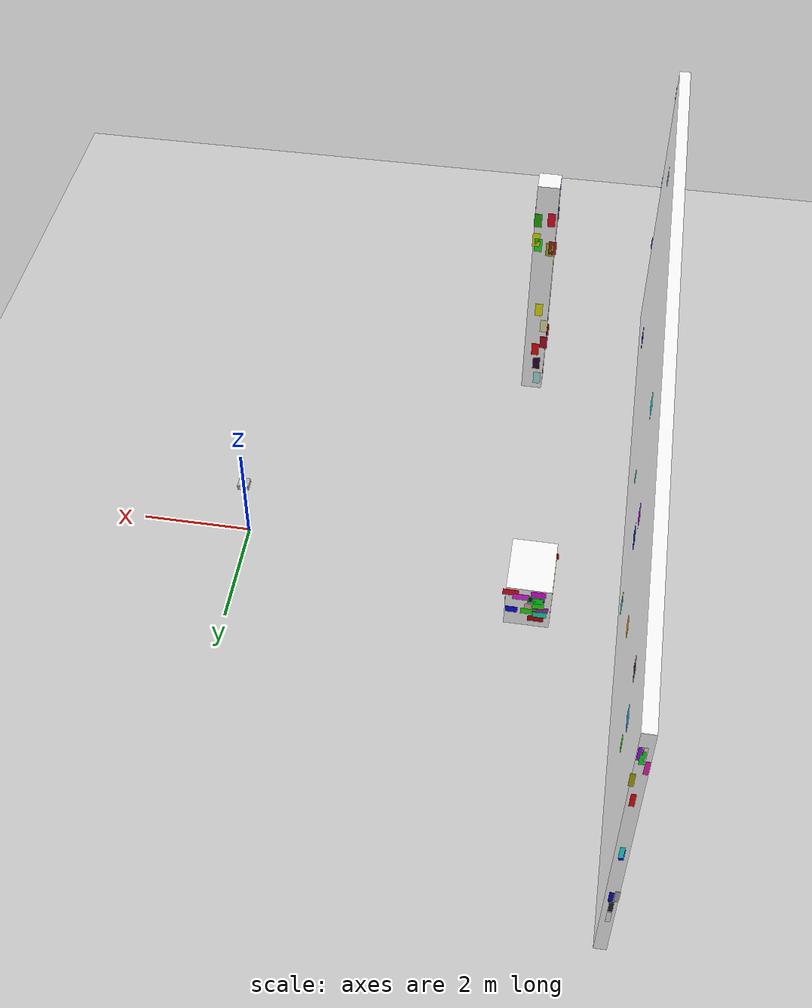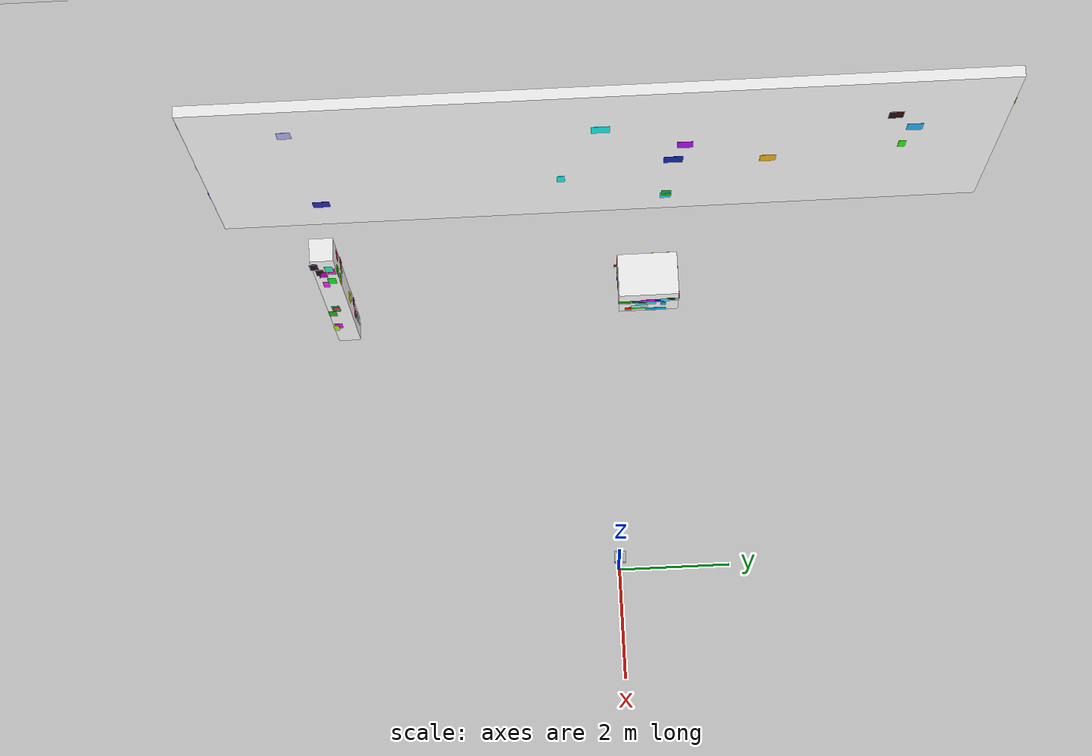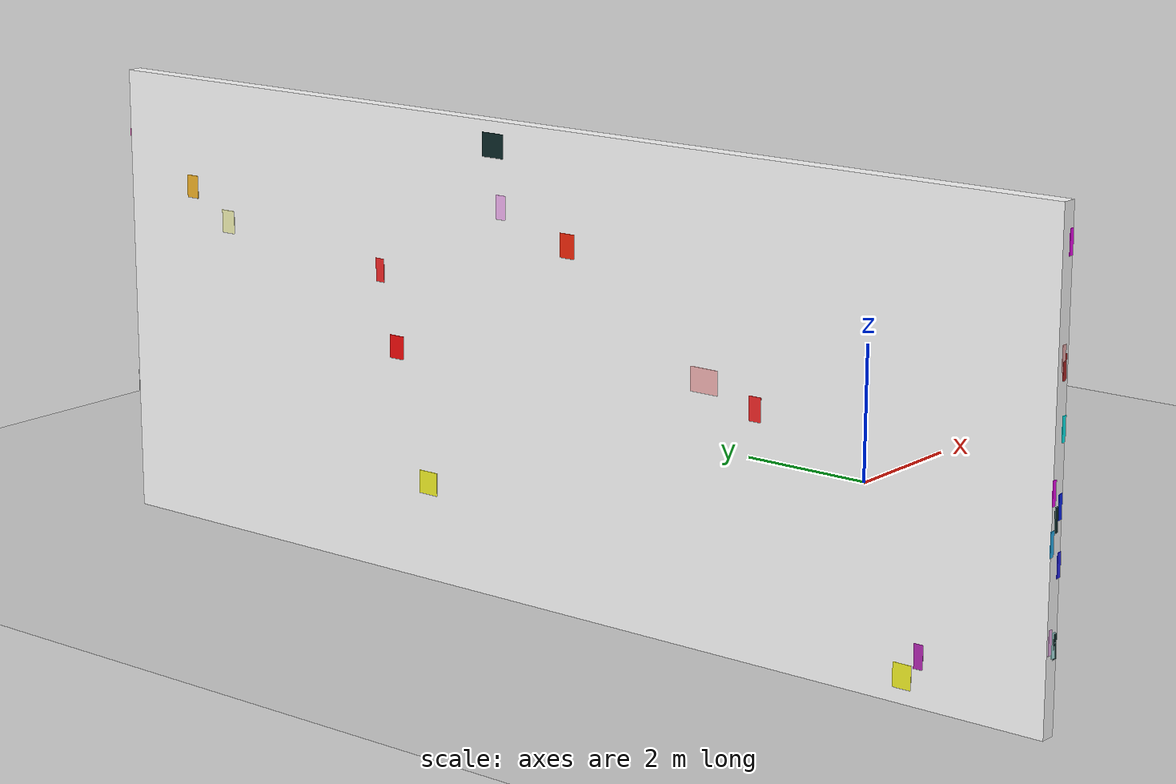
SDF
<sdf version="1.9">
 <world name="default">
  <model name="ground_plane">
   <static>true</static>
   <link name="link">
    <collision name="collision">
     <geometry><plane><normal>0 0 1</normal><size>1 1</size></plane></geometry>
    </collision>
    <visual name="visual">
     <geometry><plane><normal>0 0 1</normal><size>500 500</size></plane></geometry>
     <material>
      <ambient>0.8 0.8 0.8 1</ambient>
      <diffuse>0.8 0.8 0.8 1</diffuse>
      <specular>0.8 0.8 0.8 1</specular>
     </material>
    </visual>
    <inertial>
     <mass>1</mass>
     <inertia><ixx>1</ixx><ixy>0</ixy><ixz>0</ixz><iyy>1</iyy><iyz>0</iyz><izz>1</izz></inertia>
    </inertial>
   </link>
  </model>
  <include>
   <uri>model://vio_motion_carrier</uri>
   <name>vio_motion_carrier</name>
   <pose>0 0 1.3 0 0 0</pose>
  </include>
  <model name="wall_west">
   <static>true</static>
   <pose>-7 0 3 0 0 0</pose>
   <link name="structure">
    <collision name="collision"><geometry><box><size>0.2 14.2 6</size></box></geometry></collision>
    <visual name="surface">
     <geometry><box><size>0.2 14.2 6</size></box></geometry>
     <material>
      <ambient>1 1 1 1</ambient>
      <diffuse>1 1 1 1</diffuse>
      <pbr>
       <metal>
        <albedo_map>model://warehouse_textures/materials/textures/wall_west.png</albedo_map>
        <metalness>0</metalness>
        <roughness>1</roughness>
       </metal>
      </pbr>
     </material>
    </visual>
    <visual name="feature_0_0">
     <pose>-0.10200000000000001 -2.4399980160481607 0.3020556819575564 0 0 0</pose>
     <geometry><box><size>0.004 0.3915892769131405 0.3</size></box></geometry>
     <material><ambient>0.95 0.7 0.7 1</ambient><diffuse>0.95 0.7 0.7 1</diffuse></material>
    </visual>
    <visual name="feature_0_1">
     <pose>-0.10200000000000001 -5.469895380556496 -2.391834382314927 0 0 0</pose>
     <geometry><box><size>0.004 0.12230098529325793 0.3</size></box></geometry>
     <material><ambient>0.7 0.15 0.7 1</ambient><diffuse>0.7 0.15 0.7 1</diffuse></material>
    </visual>
    <visual name="feature_0_2">
     <pose>-0.10200000000000001 -0.3922380446730216 1.619069457699612 0 0 0</pose>
     <geometry><box><size>0.004 0.21475900137104384 0.3</size></box></geometry>
     <material><ambient>0.95 0.15 0.04 1</ambient><diffuse>0.95 0.15 0.04 1</diffuse></material>
    </visual>
    <visual name="feature_0_3">
     <pose>-0.10200000000000001 5.303675404785616 1.1770575741565459 0 0 0</pose>
     <geometry><box><size>0.004 0.21581993688109666 0.3</size></box></geometry>
     <material><ambient>0.95 0.95 0.7 1</ambient><diffuse>0.95 0.95 0.7 1</diffuse></material>
    </visual>
    <visual name="feature_0_4">
     <pose>-0.10200000000000001 1.857140336990156 -1.7308972042441964 0 0 0</pose>
     <geometry><box><size>0.004 0.2853784063809313 0.3</size></box></geometry>
     <material><ambient>0.95 0.95 0.15 1</ambient><diffuse>0.95 0.95 0.15 1</diffuse></material>
    </visual>
    <visual name="feature_0_5">
     <pose>-0.10200000000000001 -5.257246740748468 -2.6705996857956467 0 0 0</pose>
     <geometry><box><size>0.004 0.24765341213349165 0.3</size></box></geometry>
     <material><ambient>0.95 0.95 0.15 1</ambient><diffuse>0.95 0.95 0.15 1</diffuse></material>
    </visual>
    <visual name="feature_0_6">
     <pose>-0.10200000000000001 0.6406034004180539 1.9547910802914412 0 0 0</pose>
     <geometry><box><size>0.004 0.15719647215785326 0.3</size></box></geometry>
     <material><ambient>0.95 0.7 0.95 1</ambient><diffuse>0.95 0.7 0.95 1</diffuse></material>
    </visual>
    <visual name="feature_0_7">
     <pose>-0.10200000000000001 5.950152480403291 1.565054231273173 0 0 0</pose>
     <geometry><box><size>0.004 0.19411906627216463 0.3</size></box></geometry>
     <material><ambient>0.95 0.7 0.15 1</ambient><diffuse>0.95 0.7 0.15 1</diffuse></material>
    </visual>
    <visual name="feature_0_8">
     <pose>-0.10200000000000001 -3.170714427656762 0.08628925859680692 0 0 0</pose>
     <geometry><box><size>0.004 0.16883432869781856 0.3</size></box></geometry>
     <material><ambient>0.95 0.15 0.15 1</ambient><diffuse>0.95 0.15 0.15 1</diffuse></material>
    </visual>
    <visual name="feature_0_9">
     <pose>-0.10200000000000001 2.361354726646524 -0.04804159367639427 0 0 0</pose>
     <geometry><box><size>0.004 0.23035874622938698 0.3</size></box></geometry>
     <material><ambient>0.95 0.04 0.04 1</ambient><diffuse>0.95 0.04 0.04 1</diffuse></material>
    </visual>
    <visual name="feature_0_10">
     <pose>-0.10200000000000001 0.7603342701338871 2.6998069709910046 0 0 0</pose>
     <geometry><box><size>0.004 0.32312808295700146 0.3</size></box></geometry>
     <material><ambient>0.04 0.15 0.15 1</ambient><diffuse>0.04 0.15 0.15 1</diffuse></material>
    </visual>
    <visual name="feature_0_11">
     <pose>-0.10200000000000001 2.6294569060722415 0.9065385129955983 0 0 0</pose>
     <geometry><box><size>0.004 0.1335520405367582 0.3</size></box></geometry>
     <material><ambient>0.95 0.15 0.15 1</ambient><diffuse>0.95 0.15 0.15 1</diffuse></material>
    </visual>
    <visual name="feature_1_0">
     <pose>0.10200000000000001 -5.399512206344948 1.8735425798313612 0 0 0</pose>
     <geometry><box><size>0.004 0.2418432798297935 0.3</size></box></geometry>
     <material><ambient>0.7 0.7 0.95 1</ambient><diffuse>0.7 0.7 0.95 1</diffuse></material>
    </visual>
    <visual name="feature_1_1">
     <pose>0.10200000000000001 5.113483547642439 1.4560023157235351 0 0 0</pose>
     <geometry><box><size>0.004 0.2602024849089039 0.3</size></box></geometry>
     <material><ambient>0.15 0.04 0.04 1</ambient><diffuse>0.15 0.04 0.04 1</diffuse></material>
    </visual>
    <visual name="feature_1_2">
     <pose>0.10200000000000001 0.003909557750823467 1.4239754996089058 0 0 0</pose>
     <geometry><box><size>0.004 0.3210840017837414 0.3</size></box></geometry>
     <material><ambient>0.04 0.95 0.95 1</ambient><diffuse>0.04 0.95 0.95 1</diffuse></material>
    </visual>
    <visual name="feature_1_3">
     <pose>0.10200000000000001 -5.1558248896728704 -1.8593190721477653 0 0 0</pose>
     <geometry><box><size>0.004 0.31464795694989345 0.3</size></box></geometry>
     <material><ambient>0.15 0.15 0.7 1</ambient><diffuse>0.15 0.15 0.7 1</diffuse></material>
    </visual>
    <visual name="feature_1_4">
     <pose>0.10200000000000001 5.510971681542455 0.8155410828662855 0 0 0</pose>
     <geometry><box><size>0.004 0.28785485438118963 0.3</size></box></geometry>
     <material><ambient>0.15 0.7 0.95 1</ambient><diffuse>0.15 0.7 0.95 1</diffuse></material>
    </visual>
    <visual name="feature_1_5">
     <pose>0.10200000000000001 1.2185686625670114 -2.2565620411603713 0 0 0</pose>
     <geometry><box><size>0.004 0.2053780267001708 0.3</size></box></geometry>
     <material><ambient>0.15 0.95 0.95 1</ambient><diffuse>0.15 0.95 0.95 1</diffuse></material>
    </visual>
    <visual name="feature_1_6">
     <pose>0.10200000000000001 1.2313417950706773 -2.153556797394641 0 0 0</pose>
     <geometry><box><size>0.004 0.18775018185270168 0.3</size></box></geometry>
     <material><ambient>0.15 0.7 0.15 1</ambient><diffuse>0.15 0.7 0.15 1</diffuse></material>
    </visual>
    <visual name="feature_1_7">
     <pose>0.10200000000000001 1.4967319646772026 0.4535006445750165 0 0 0</pose>
     <geometry><box><size>0.004 0.27968708074921705 0.3</size></box></geometry>
     <material><ambient>0.7 0.04 0.95 1</ambient><diffuse>0.7 0.04 0.95 1</diffuse></material>
    </visual>
    <visual name="feature_1_8">
     <pose>0.10200000000000001 -0.7172996017168378 -1.0624026120775714 0 0 0</pose>
     <geometry><box><size>0.004 0.14363849470104317 0.3</size></box></geometry>
     <material><ambient>0.04 0.95 0.95 1</ambient><diffuse>0.04 0.95 0.95 1</diffuse></material>
    </visual>
    <visual name="feature_1_9">
     <pose>0.10200000000000001 5.380406554997474 -0.02972041102786349 0 0 0</pose>
     <geometry><box><size>0.004 0.13555540260375187 0.3</size></box></geometry>
     <material><ambient>0.15 0.95 0.04 1</ambient><diffuse>0.15 0.95 0.04 1</diffuse></material>
    </visual>
    <visual name="feature_1_10">
     <pose>0.10200000000000001 1.3121269055660543 -0.29682539251616236 0 0 0</pose>
     <geometry><box><size>0.004 0.343418644844803 0.3</size></box></geometry>
     <material><ambient>0.04 0.15 0.7 1</ambient><diffuse>0.04 0.15 0.7 1</diffuse></material>
    </visual>
    <visual name="feature_1_11">
     <pose>0.10200000000000001 3.0123426507784385 -0.44656640002336223 0 0 0</pose>
     <geometry><box><size>0.004 0.2870872941407462 0.3</size></box></geometry>
     <material><ambient>0.95 0.7 0.04 1</ambient><diffuse>0.95 0.7 0.04 1</diffuse></material>
    </visual>
    <visual name="feature_2_0">
     <pose>-0.07991013242355217 -7.101999999999999 -0.7561266371148745 0 0 0</pose>
     <geometry><box><size>0.06999999999999999 0.004 0.3</size></box></geometry>
     <material><ambient>0.15 0.7 0.95 1</ambient><diffuse>0.15 0.7 0.95 1</diffuse></material>
    </visual>
    <visual name="feature_2_1">
     <pose>0.03669403453833113 -7.101999999999999 1.1883494590325112 0 0 0</pose>
     <geometry><box><size>0.06999999999999999 0.004 0.3</size></box></geometry>
     <material><ambient>0.7 0.15 0.15 1</ambient><diffuse>0.7 0.15 0.15 1</diffuse></material>
    </visual>
    <visual name="feature_2_2">
     <pose>0.08337135820517337 -7.101999999999999 -1.0278463338228963 0 0 0</pose>
     <geometry><box><size>0.06999999999999999 0.004 0.3</size></box></geometry>
     <material><ambient>0.15 0.15 0.95 1</ambient><diffuse>0.15 0.15 0.95 1</diffuse></material>
    </visual>
    <visual name="feature_2_3">
     <pose>-0.07619952582028745 -7.101999999999999 -0.1836294385403905 0 0 0</pose>
     <geometry><box><size>0.06999999999999999 0.004 0.3</size></box></geometry>
     <material><ambient>0.95 0.04 0.95 1</ambient><diffuse>0.95 0.04 0.95 1</diffuse></material>
    </visual>
    <visual name="feature_2_4">
     <pose>-0.03448234247563747 -7.101999999999999 -1.883475053466344 0 0 0</pose>
     <geometry><box><size>0.06999999999999999 0.004 0.3</size></box></geometry>
     <material><ambient>0.95 0.7 0.95 1</ambient><diffuse>0.95 0.7 0.95 1</diffuse></material>
    </visual>
    <visual name="feature_2_5">
     <pose>0.01170848448713191 -7.101999999999999 1.2914774825609996 0 0 0</pose>
     <geometry><box><size>0.06999999999999999 0.004 0.3</size></box></geometry>
     <material><ambient>0.95 0.7 0.7 1</ambient><diffuse>0.95 0.7 0.7 1</diffuse></material>
    </visual>
    <visual name="feature_2_6">
     <pose>0.07116156059138791 -7.101999999999999 0.4999555629831667 0 0 0</pose>
     <geometry><box><size>0.06999999999999999 0.004 0.3</size></box></geometry>
     <material><ambient>0.04 0.95 0.95 1</ambient><diffuse>0.04 0.95 0.95 1</diffuse></material>
    </visual>
    <visual name="feature_2_7">
     <pose>-0.007971952722534037 -7.101999999999999 -0.497226688570517 0 0 0</pose>
     <geometry><box><size>0.06999999999999999 0.004 0.3</size></box></geometry>
     <material><ambient>0.04 0.15 0.15 1</ambient><diffuse>0.04 0.15 0.15 1</diffuse></material>
    </visual>
    <visual name="feature_2_8">
     <pose>0.06343480146830573 -7.101999999999999 -0.3664382893202238 0 0 0</pose>
     <geometry><box><size>0.06999999999999999 0.004 0.3</size></box></geometry>
     <material><ambient>0.04 0.15 0.95 1</ambient><diffuse>0.04 0.15 0.95 1</diffuse></material>
    </visual>
    <visual name="feature_2_9">
     <pose>0.06431576085093442 -7.101999999999999 -1.953412984633799 0 0 0</pose>
     <geometry><box><size>0.06999999999999999 0.004 0.3</size></box></geometry>
     <material><ambient>0.04 0.15 0.15 1</ambient><diffuse>0.04 0.15 0.15 1</diffuse></material>
    </visual>
    <visual name="feature_2_10">
     <pose>0.03253761486497819 -7.101999999999999 -1.9315518510024878 0 0 0</pose>
     <geometry><box><size>0.06999999999999999 0.004 0.3</size></box></geometry>
     <material><ambient>0.7 0.95 0.95 1</ambient><diffuse>0.7 0.95 0.95 1</diffuse></material>
    </visual>
    <visual name="feature_2_11">
     <pose>0.07052570471376453 -7.101999999999999 2.5447842467985975 0 0 0</pose>
     <geometry><box><size>0.06999999999999999 0.004 0.3</size></box></geometry>
     <material><ambient>0.95 0.04 0.95 1</ambient><diffuse>0.95 0.04 0.95 1</diffuse></material>
    </visual>
    <visual name="feature_3_0">
     <pose>0.006474535881474092 7.101999999999999 2.5459525278538377 0 0 0</pose>
     <geometry><box><size>0.06999999999999999 0.004 0.3</size></box></geometry>
     <material><ambient>0.95 0.95 0.95 1</ambient><diffuse>0.95 0.95 0.95 1</diffuse></material>
    </visual>
    <visual name="feature_3_1">
     <pose>-0.017878671191996973 7.101999999999999 -1.581706155410074 0 0 0</pose>
     <geometry><box><size>0.06999999999999999 0.004 0.3</size></box></geometry>
     <material><ambient>0.15 0.15 0.15 1</ambient><diffuse>0.15 0.15 0.15 1</diffuse></material>
    </visual>
    <visual name="feature_3_2">
     <pose>0.017576754217694654 7.101999999999999 1.426769199673192 0 0 0</pose>
     <geometry><box><size>0.06999999999999999 0.004 0.3</size></box></geometry>
     <material><ambient>0.95 0.04 0.04 1</ambient><diffuse>0.95 0.04 0.04 1</diffuse></material>
    </visual>
    <visual name="feature_3_3">
     <pose>0.006894885509430432 7.101999999999999 -1.2993058035159568 0 0 0</pose>
     <geometry><box><size>0.06999999999999999 0.004 0.3</size></box></geometry>
     <material><ambient>0.04 0.04 0.7 1</ambient><diffuse>0.04 0.04 0.7 1</diffuse></material>
    </visual>
    <visual name="feature_3_4">
     <pose>0.016524127904333108 7.101999999999999 2.4506980377521455 0 0 0</pose>
     <geometry><box><size>0.06999999999999999 0.004 0.3</size></box></geometry>
     <material><ambient>0.04 0.95 0.15 1</ambient><diffuse>0.04 0.95 0.15 1</diffuse></material>
    </visual>
    <visual name="feature_3_5">
     <pose>-0.06561015559391227 7.101999999999999 2.2327862794091535 0 0 0</pose>
     <geometry><box><size>0.06999999999999999 0.004 0.3</size></box></geometry>
     <material><ambient>0.95 0.15 0.7 1</ambient><diffuse>0.95 0.15 0.7 1</diffuse></material>
    </visual>
    <visual name="feature_3_6">
     <pose>0.0532409292346545 7.101999999999999 2.5385344094423035 0 0 0</pose>
     <geometry><box><size>0.06999999999999999 0.004 0.3</size></box></geometry>
     <material><ambient>0.7 0.04 0.95 1</ambient><diffuse>0.7 0.04 0.95 1</diffuse></material>
    </visual>
    <visual name="feature_3_7">
     <pose>0.08374873507306586 7.101999999999999 1.9144505125081581 0 0 0</pose>
     <geometry><box><size>0.06999999999999999 0.004 0.3</size></box></geometry>
     <material><ambient>0.7 0.7 0.04 1</ambient><diffuse>0.7 0.7 0.04 1</diffuse></material>
    </visual>
    <visual name="feature_3_8">
     <pose>-0.07185214656855918 7.101999999999999 -1.2465015885113353 0 0 0</pose>
     <geometry><box><size>0.06999999999999999 0.004 0.3</size></box></geometry>
     <material><ambient>0.7 0.7 0.7 1</ambient><diffuse>0.7 0.7 0.7 1</diffuse></material>
    </visual>
    <visual name="feature_3_9">
     <pose>-0.006473240006751202 7.101999999999999 -0.03164831225535769 0 0 0</pose>
     <geometry><box><size>0.06999999999999999 0.004 0.3</size></box></geometry>
     <material><ambient>0.15 0.04 0.95 1</ambient><diffuse>0.15 0.04 0.95 1</diffuse></material>
    </visual>
    <visual name="feature_3_10">
     <pose>0.001973377840803467 7.101999999999999 0.02778293553877731 0 0 0</pose>
     <geometry><box><size>0.06999999999999999 0.004 0.3</size></box></geometry>
     <material><ambient>0.15 0.95 0.95 1</ambient><diffuse>0.15 0.95 0.95 1</diffuse></material>
    </visual>
    <visual name="feature_3_11">
     <pose>-0.017681620398762657 7.101999999999999 -1.9031852857431533 0 0 0</pose>
     <geometry><box><size>0.06999999999999999 0.004 0.3</size></box></geometry>
     <material><ambient>0.95 0.95 0.95 1</ambient><diffuse>0.95 0.95 0.95 1</diffuse></material>
    </visual>
   </link>
  </model>
  <model name="column_sw">
   <static>true</static>
   <pose>-4.8 -4.8 2.5 0 0 0</pose>
   <link name="structure">
    <collision name="collision"><geometry><box><size>0.4 0.4 5</size></box></geometry></collision>
    <visual name="surface">
     <geometry><box><size>0.4 0.4 5</size></box></geometry>
     <material>
      <ambient>1 1 1 1</ambient>
      <diffuse>1 1 1 1</diffuse>
      <pbr>
       <metal>
        <albedo_map>model://warehouse_textures/materials/textures/column_sw.png</albedo_map>
        <metalness>0</metalness>
        <roughness>1</roughness>
       </metal>
      </pbr>
     </material>
    </visual>
    <visual name="feature_0_0">
     <pose>-0.202 -0.07267375483536538 -1.4799013978354623 0 0 0</pose>
     <geometry><box><size>0.004 0.13999999999999999 0.3</size></box></geometry>
     <material><ambient>0.7 0.04 0.7 1</ambient><diffuse>0.7 0.04 0.7 1</diffuse></material>
    </visual>
    <visual name="feature_0_1">
     <pose>-0.202 -0.047015039398556835 -1.1971079683353332 0 0 0</pose>
     <geometry><box><size>0.004 0.11820291566785776 0.3</size></box></geometry>
     <material><ambient>0.15 0.04 0.95 1</ambient><diffuse>0.15 0.04 0.95 1</diffuse></material>
    </visual>
    <visual name="feature_0_2">
     <pose>-0.202 0.008803335878503876 0.6942735492359144 0 0 0</pose>
     <geometry><box><size>0.004 0.13999999999999999 0.3</size></box></geometry>
     <material><ambient>0.7 0.7 0.04 1</ambient><diffuse>0.7 0.7 0.04 1</diffuse></material>
    </visual>
    <visual name="feature_0_3">
     <pose>-0.202 -0.14105511397369552 1.5157899012883238 0 0 0</pose>
     <geometry><box><size>0.004 0.13999999999999999 0.3</size></box></geometry>
     <material><ambient>0.04 0.04 0.04 1</ambient><diffuse>0.04 0.04 0.04 1</diffuse></material>
    </visual>
    <visual name="feature_0_4">
     <pose>-0.202 -0.05973902449138582 -0.5709452592680939 0 0 0</pose>
     <geometry><box><size>0.004 0.13999999999999999 0.3</size></box></geometry>
     <material><ambient>0.7 0.7 0.7 1</ambient><diffuse>0.7 0.7 0.7 1</diffuse></material>
    </visual>
    <visual name="feature_0_5">
     <pose>-0.202 0.06736642404945029 1.2634547038126995 0 0 0</pose>
     <geometry><box><size>0.004 0.13999999999999999 0.3</size></box></geometry>
     <material><ambient>0.04 0.7 0.04 1</ambient><diffuse>0.04 0.7 0.04 1</diffuse></material>
    </visual>
    <visual name="feature_0_6">
     <pose>-0.202 -0.05882590787551681 -0.19649786313238415 0 0 0</pose>
     <geometry><box><size>0.004 0.13999999999999999 0.3</size></box></geometry>
     <material><ambient>0.7 0.7 0.7 1</ambient><diffuse>0.7 0.7 0.7 1</diffuse></material>
    </visual>
    <visual name="feature_0_7">
     <pose>-0.202 -0.04477005011043249 1.9326599799500883 0 0 0</pose>
     <geometry><box><size>0.004 0.11123353294707526 0.3</size></box></geometry>
     <material><ambient>0.04 0.7 0.04 1</ambient><diffuse>0.04 0.7 0.04 1</diffuse></material>
    </visual>
    <visual name="feature_0_8">
     <pose>-0.202 0.023986944237926716 1.3054177162599858 0 0 0</pose>
     <geometry><box><size>0.004 0.13999999999999999 0.3</size></box></geometry>
     <material><ambient>0.95 0.95 0.7 1</ambient><diffuse>0.95 0.95 0.7 1</diffuse></material>
    </visual>
    <visual name="feature_0_9">
     <pose>-0.202 0.04954831916533342 -2.141668965693576 0 0 0</pose>
     <geometry><box><size>0.004 0.11296555281786973 0.3</size></box></geometry>
     <material><ambient>0.7 0.15 0.15 1</ambient><diffuse>0.7 0.15 0.15 1</diffuse></material>
    </visual>
    <visual name="feature_0_10">
     <pose>-0.202 -0.12208536326981838 2.2113459958003077 0 0 0</pose>
     <geometry><box><size>0.004 0.13999999999999999 0.3</size></box></geometry>
     <material><ambient>0.7 0.04 0.95 1</ambient><diffuse>0.7 0.04 0.95 1</diffuse></material>
    </visual>
    <visual name="feature_0_11">
     <pose>-0.202 -0.04224294247227989 -0.893597617421293 0 0 0</pose>
     <geometry><box><size>0.004 0.13999999999999999 0.3</size></box></geometry>
     <material><ambient>0.7 0.15 0.15 1</ambient><diffuse>0.7 0.15 0.15 1</diffuse></material>
    </visual>
    <visual name="feature_1_0">
     <pose>0.202 0.11019220070524874 1.896889116546551 0 0 0</pose>
     <geometry><box><size>0.004 0.13999999999999999 0.3</size></box></geometry>
     <material><ambient>0.95 0.15 0.7 1</ambient><diffuse>0.95 0.15 0.7 1</diffuse></material>
    </visual>
    <visual name="feature_1_1">
     <pose>0.202 -0.03829880976947453 -0.38394642894908193 0 0 0</pose>
     <geometry><box><size>0.004 0.13999999999999999 0.3</size></box></geometry>
     <material><ambient>0.95 0.15 0.04 1</ambient><diffuse>0.95 0.15 0.04 1</diffuse></material>
    </visual>
    <visual name="feature_1_2">
     <pose>0.202 -0.08858601063882453 1.8570098557647912 0 0 0</pose>
     <geometry><box><size>0.004 0.13377368213895535 0.3</size></box></geometry>
     <material><ambient>0.15 0.04 0.04 1</ambient><diffuse>0.15 0.04 0.04 1</diffuse></material>
    </visual>
    <visual name="feature_1_3">
     <pose>0.202 -0.12892737613088734 -0.6891472276248969 0 0 0</pose>
     <geometry><box><size>0.004 0.13999999999999999 0.3</size></box></geometry>
     <material><ambient>0.15 0.7 0.04 1</ambient><diffuse>0.15 0.7 0.04 1</diffuse></material>
    </visual>
    <visual name="feature_1_4">
     <pose>0.202 -0.10555461891324736 -1.509931935570243 0 0 0</pose>
     <geometry><box><size>0.004 0.13999999999999999 0.3</size></box></geometry>
     <material><ambient>0.95 0.04 0.95 1</ambient><diffuse>0.95 0.04 0.95 1</diffuse></material>
    </visual>
    <visual name="feature_1_5">
     <pose>0.202 -0.046934705015001243 1.7225011725114983 0 0 0</pose>
     <geometry><box><size>0.004 0.13999999999999999 0.3</size></box></geometry>
     <material><ambient>0.7 0.04 0.7 1</ambient><diffuse>0.7 0.04 0.7 1</diffuse></material>
    </visual>
    <visual name="feature_1_6">
     <pose>0.202 0.07789981350862155 2.0200478505255317 0 0 0</pose>
     <geometry><box><size>0.004 0.13999999999999999 0.3</size></box></geometry>
     <material><ambient>0.15 0.95 0.7 1</ambient><diffuse>0.15 0.95 0.7 1</diffuse></material>
    </visual>
    <visual name="feature_1_7">
     <pose>0.202 0.0669566091803244 1.3507061511970253 0 0 0</pose>
     <geometry><box><size>0.004 0.13999999999999999 0.3</size></box></geometry>
     <material><ambient>0.04 0.95 0.15 1</ambient><diffuse>0.04 0.95 0.15 1</diffuse></material>
    </visual>
    <visual name="feature_1_8">
     <pose>0.202 -0.15942087869219995 2.1759873870249438 0 0 0</pose>
     <geometry><box><size>0.004 0.13999999999999999 0.3</size></box></geometry>
     <material><ambient>0.15 0.04 0.15 1</ambient><diffuse>0.15 0.04 0.15 1</diffuse></material>
    </visual>
    <visual name="feature_1_9">
     <pose>0.202 -0.04293377996137793 -0.34063052428538887 0 0 0</pose>
     <geometry><box><size>0.004 0.13999999999999999 0.3</size></box></geometry>
     <material><ambient>0.15 0.95 0.7 1</ambient><diffuse>0.15 0.95 0.7 1</diffuse></material>
    </visual>
    <visual name="feature_1_10">
     <pose>0.202 -0.15711880394539499 -1.6389853099214489 0 0 0</pose>
     <geometry><box><size>0.004 0.10141710811829728 0.3</size></box></geometry>
     <material><ambient>0.7 0.95 0.04 1</ambient><diffuse>0.7 0.95 0.04 1</diffuse></material>
    </visual>
    <visual name="feature_1_11">
     <pose>0.202 -0.048286262936234975 1.1555795938338824 0 0 0</pose>
     <geometry><box><size>0.004 0.10733700032630952 0.3</size></box></geometry>
     <material><ambient>0.95 0.15 0.95 1</ambient><diffuse>0.95 0.15 0.95 1</diffuse></material>
    </visual>
    <visual name="feature_2_0">
     <pose>0.12225767178600219 -0.202 1.5349150862071852 0 0 0</pose>
     <geometry><box><size>0.13999999999999999 0.004 0.3</size></box></geometry>
     <material><ambient>0.95 0.95 0.95 1</ambient><diffuse>0.95 0.95 0.95 1</diffuse></material>
    </visual>
    <visual name="feature_2_1">
     <pose>0.07323564378936451 -0.202 -0.38640525057213093 0 0 0</pose>
     <geometry><box><size>0.13999999999999999 0.004 0.3</size></box></geometry>
     <material><ambient>0.7 0.95 0.15 1</ambient><diffuse>0.7 0.95 0.15 1</diffuse></material>
    </visual>
    <visual name="feature_2_2">
     <pose>-0.070991369438078 -0.202 -1.1789242487419453 0 0 0</pose>
     <geometry><box><size>0.13999999999999999 0.004 0.3</size></box></geometry>
     <material><ambient>0.7 0.95 0.15 1</ambient><diffuse>0.7 0.95 0.15 1</diffuse></material>
    </visual>
    <visual name="feature_2_3">
     <pose>-0.037519520928310096 -0.202 -1.077206358855733 0 0 0</pose>
     <geometry><box><size>0.13999999999999999 0.004 0.3</size></box></geometry>
     <material><ambient>0.15 0.04 0.04 1</ambient><diffuse>0.15 0.04 0.04 1</diffuse></material>
    </visual>
    <visual name="feature_2_4">
     <pose>0.002154186567423666 -0.202 -0.5018794532448783 0 0 0</pose>
     <geometry><box><size>0.11742882777687771 0.004 0.3</size></box></geometry>
     <material><ambient>0.15 0.7 0.7 1</ambient><diffuse>0.15 0.7 0.7 1</diffuse></material>
    </visual>
    <visual name="feature_2_5">
     <pose>0.1056733773452794 -0.202 0.26530835524586216 0 0 0</pose>
     <geometry><box><size>0.13999999999999999 0.004 0.3</size></box></geometry>
     <material><ambient>0.15 0.15 0.7 1</ambient><diffuse>0.15 0.15 0.7 1</diffuse></material>
    </visual>
    <visual name="feature_2_6">
     <pose>-0.16568491214385617 -0.202 -1.2655478433270828 0 0 0</pose>
     <geometry><box><size>0.13999999999999999 0.004 0.3</size></box></geometry>
     <material><ambient>0.7 0.04 0.04 1</ambient><diffuse>0.7 0.04 0.04 1</diffuse></material>
    </visual>
    <visual name="feature_2_7">
     <pose>-0.13511952594146537 -0.202 -1.3300383469619523 0 0 0</pose>
     <geometry><box><size>0.13999999999999999 0.004 0.3</size></box></geometry>
     <material><ambient>0.15 0.15 0.04 1</ambient><diffuse>0.15 0.15 0.04 1</diffuse></material>
    </visual>
    <visual name="feature_2_8">
     <pose>-0.14375138433132673 -0.202 1.6353133249669916 0 0 0</pose>
     <geometry><box><size>0.13999999999999999 0.004 0.3</size></box></geometry>
     <material><ambient>0.15 0.15 0.95 1</ambient><diffuse>0.15 0.15 0.95 1</diffuse></material>
    </visual>
    <visual name="feature_2_9">
     <pose>-0.02175074370568003 -0.202 -1.0153400515673814 0 0 0</pose>
     <geometry><box><size>0.13999999999999999 0.004 0.3</size></box></geometry>
     <material><ambient>0.7 0.95 0.04 1</ambient><diffuse>0.7 0.95 0.04 1</diffuse></material>
    </visual>
    <visual name="feature_2_10">
     <pose>0.12950545687838858 -0.202 -1.4269500799091475 0 0 0</pose>
     <geometry><box><size>0.13999999999999999 0.004 0.3</size></box></geometry>
     <material><ambient>0.15 0.7 0.7 1</ambient><diffuse>0.15 0.7 0.7 1</diffuse></material>
    </visual>
    <visual name="feature_2_11">
     <pose>-0.02620584836442022 -0.202 0.06073511550357136 0 0 0</pose>
     <geometry><box><size>0.13999999999999999 0.004 0.3</size></box></geometry>
     <material><ambient>0.7 0.7 0.95 1</ambient><diffuse>0.7 0.7 0.95 1</diffuse></material>
    </visual>
    <visual name="feature_3_0">
     <pose>-0.1657927735327486 0.202 -1.2479356442777252 0 0 0</pose>
     <geometry><box><size>0.13999999999999999 0.004 0.3</size></box></geometry>
     <material><ambient>0.7 0.04 0.15 1</ambient><diffuse>0.7 0.04 0.15 1</diffuse></material>
    </visual>
    <visual name="feature_3_1">
     <pose>0.1458720846314631 0.202 1.2942452076553437 0 0 0</pose>
     <geometry><box><size>0.13999999999999999 0.004 0.3</size></box></geometry>
     <material><ambient>0.95 0.95 0.04 1</ambient><diffuse>0.95 0.95 0.04 1</diffuse></material>
    </visual>
    <visual name="feature_3_2">
     <pose>-0.015889914214278156 0.202 -0.4065836336815789 0 0 0</pose>
     <geometry><box><size>0.13999999999999999 0.004 0.3</size></box></geometry>
     <material><ambient>0.95 0.95 0.04 1</ambient><diffuse>0.95 0.95 0.04 1</diffuse></material>
    </visual>
    <visual name="feature_3_3">
     <pose>0.1027228782850074 0.202 1.173886293879661 0 0 0</pose>
     <geometry><box><size>0.13999999999999999 0.004 0.3</size></box></geometry>
     <material><ambient>0.15 0.95 0.15 1</ambient><diffuse>0.15 0.95 0.15 1</diffuse></material>
    </visual>
    <visual name="feature_3_4">
     <pose>-0.05785619899880358 0.202 -1.8258290630698784 0 0 0</pose>
     <geometry><box><size>0.13999999999999999 0.004 0.3</size></box></geometry>
     <material><ambient>0.15 0.04 0.15 1</ambient><diffuse>0.15 0.04 0.15 1</diffuse></material>
    </visual>
    <visual name="feature_3_5">
     <pose>-0.0960556425833061 0.202 -2.2228723166434716 0 0 0</pose>
     <geometry><box><size>0.13999999999999999 0.004 0.3</size></box></geometry>
     <material><ambient>0.7 0.95 0.95 1</ambient><diffuse>0.7 0.95 0.95 1</diffuse></material>
    </visual>
    <visual name="feature_3_6">
     <pose>-0.014577152363314999 0.202 -1.4512522352528574 0 0 0</pose>
     <geometry><box><size>0.13999999999999999 0.004 0.3</size></box></geometry>
     <material><ambient>0.95 0.04 0.04 1</ambient><diffuse>0.95 0.04 0.04 1</diffuse></material>
    </visual>
    <visual name="feature_3_7">
     <pose>0.14211327902759138 0.202 1.7401405280083222 0 0 0</pose>
     <geometry><box><size>0.13999999999999999 0.004 0.3</size></box></geometry>
     <material><ambient>0.15 0.7 0.04 1</ambient><diffuse>0.15 0.7 0.04 1</diffuse></material>
    </visual>
    <visual name="feature_3_8">
     <pose>-0.167594794802785 0.202 1.1315609345344937 0 0 0</pose>
     <geometry><box><size>0.13999999999999999 0.004 0.3</size></box></geometry>
     <material><ambient>0.7 0.15 0.15 1</ambient><diffuse>0.7 0.15 0.15 1</diffuse></material>
    </visual>
    <visual name="feature_3_9">
     <pose>-0.13936519527685207 0.202 -0.813111011070996 0 0 0</pose>
     <geometry><box><size>0.13999999999999999 0.004 0.3</size></box></geometry>
     <material><ambient>0.95 0.95 0.7 1</ambient><diffuse>0.95 0.95 0.7 1</diffuse></material>
    </visual>
    <visual name="feature_3_10">
     <pose>-0.10285957314380179 0.202 1.7745597891553189 0 0 0</pose>
     <geometry><box><size>0.13999999999999999 0.004 0.3</size></box></geometry>
     <material><ambient>0.95 0.04 0.15 1</ambient><diffuse>0.95 0.04 0.15 1</diffuse></material>
    </visual>
    <visual name="feature_3_11">
     <pose>-0.11445632917637184 0.202 1.0893666728079117 0 0 0</pose>
     <geometry><box><size>0.13999999999999999 0.004 0.3</size></box></geometry>
     <material><ambient>0.7 0.7 0.15 1</ambient><diffuse>0.7 0.7 0.15 1</diffuse></material>
    </visual>
   </link>
  </model>
  <model name="crate_west">
   <static>true</static>
   <pose>-5.3 0.8 0.5 0 0 0</pose>
   <link name="structure">
    <collision name="collision"><geometry><box><size>0.8 1.1 1</size></box></geometry></collision>
    <visual name="surface">
     <geometry><box><size>0.8 1.1 1</size></box></geometry>
     <material>
      <ambient>1 1 1 1</ambient>
      <diffuse>1 1 1 1</diffuse>
      <pbr>
       <metal>
        <albedo_map>model://warehouse_textures/materials/textures/crate_west.png</albedo_map>
        <metalness>0</metalness>
        <roughness>1</roughness>
       </metal>
      </pbr>
     </material>
    </visual>
    <visual name="feature_0_0">
     <pose>-0.402 0.3509970484600748 0.26877843322297673 0 0 0</pose>
     <geometry><box><size>0.004 0.385 0.15</size></box></geometry>
     <material><ambient>0.04 0.15 0.04 1</ambient><diffuse>0.04 0.15 0.04 1</diffuse></material>
    </visual>
    <visual name="feature_0_1">
     <pose>-0.402 -0.3872542304061475 -0.178411032676701 0 0 0</pose>
     <geometry><box><size>0.004 0.22905572890996492 0.15</size></box></geometry>
     <material><ambient>0.95 0.95 0.95 1</ambient><diffuse>0.95 0.95 0.95 1</diffuse></material>
    </visual>
    <visual name="feature_0_2">
     <pose>-0.402 -0.4180829318878332 -0.21284150580415734 0 0 0</pose>
     <geometry><box><size>0.004 0.3706387225187995 0.15</size></box></geometry>
     <material><ambient>0.15 0.15 0.04 1</ambient><diffuse>0.15 0.15 0.04 1</diffuse></material>
    </visual>
    <visual name="feature_0_3">
     <pose>-0.402 -0.41691670173612794 0.2456214589734232 0 0 0</pose>
     <geometry><box><size>0.004 0.19078882170174943 0.15</size></box></geometry>
     <material><ambient>0.15 0.15 0.95 1</ambient><diffuse>0.15 0.15 0.95 1</diffuse></material>
    </visual>
    <visual name="feature_0_4">
     <pose>-0.402 -0.14087037748493642 0.03422795999763717 0 0 0</pose>
     <geometry><box><size>0.004 0.1993624922347663 0.15</size></box></geometry>
     <material><ambient>0.7 0.95 0.7 1</ambient><diffuse>0.7 0.95 0.7 1</diffuse></material>
    </visual>
    <visual name="feature_0_5">
     <pose>-0.402 -0.2526173317582533 0.3394643944463461 0 0 0</pose>
     <geometry><box><size>0.004 0.3830576660522361 0.15</size></box></geometry>
     <material><ambient>0.7 0.7 0.04 1</ambient><diffuse>0.7 0.7 0.04 1</diffuse></material>
    </visual>
    <visual name="feature_0_6">
     <pose>-0.402 0.28733001111813633 -0.392762502491965 0 0 0</pose>
     <geometry><box><size>0.004 0.1660579416200385 0.15</size></box></geometry>
     <material><ambient>0.04 0.15 0.15 1</ambient><diffuse>0.04 0.15 0.15 1</diffuse></material>
    </visual>
    <visual name="feature_0_7">
     <pose>-0.402 0.41070824179864734 0.3450677123066012 0 0 0</pose>
     <geometry><box><size>0.004 0.11875674402025718 0.15</size></box></geometry>
     <material><ambient>0.04 0.7 0.15 1</ambient><diffuse>0.04 0.7 0.15 1</diffuse></material>
    </visual>
    <visual name="feature_0_8">
     <pose>-0.402 0.21989266214055442 0.42096810075051944 0 0 0</pose>
     <geometry><box><size>0.004 0.38149610152000324 0.15</size></box></geometry>
     <material><ambient>0.7 0.7 0.04 1</ambient><diffuse>0.7 0.7 0.04 1</diffuse></material>
    </visual>
    <visual name="feature_0_9">
     <pose>-0.402 0.044290632199084856 -0.2779711877492532 0 0 0</pose>
     <geometry><box><size>0.004 0.31374884695049726 0.15</size></box></geometry>
     <material><ambient>0.95 0.15 0.15 1</ambient><diffuse>0.95 0.15 0.15 1</diffuse></material>
    </visual>
    <visual name="feature_0_10">
     <pose>-0.402 -0.1256338717140844 0.31745611713899585 0 0 0</pose>
     <geometry><box><size>0.004 0.26265893661185197 0.15</size></box></geometry>
     <material><ambient>0.04 0.04 0.95 1</ambient><diffuse>0.04 0.04 0.95 1</diffuse></material>
    </visual>
    <visual name="feature_0_11">
     <pose>-0.402 -0.2053472670869788 -0.4420819174134085 0 0 0</pose>
     <geometry><box><size>0.004 0.27036122866512546 0.15</size></box></geometry>
     <material><ambient>0.04 0.15 0.15 1</ambient><diffuse>0.04 0.15 0.15 1</diffuse></material>
    </visual>
    <visual name="feature_1_0">
     <pose>0.402 -0.1714596107377106 -0.2206220010317357 0 0 0</pose>
     <geometry><box><size>0.004 0.3230235160917766 0.15</size></box></geometry>
     <material><ambient>0.7 0.95 0.95 1</ambient><diffuse>0.7 0.95 0.95 1</diffuse></material>
    </visual>
    <visual name="feature_1_1">
     <pose>0.402 0.16701016210096292 0.10988251751026085 0 0 0</pose>
     <geometry><box><size>0.004 0.28014712777019934 0.15</size></box></geometry>
     <material><ambient>0.15 0.04 0.7 1</ambient><diffuse>0.15 0.04 0.7 1</diffuse></material>
    </visual>
    <visual name="feature_1_2">
     <pose>0.402 0.27238211920020433 -0.1018951727359958 0 0 0</pose>
     <geometry><box><size>0.004 0.10162524845079374 0.15</size></box></geometry>
     <material><ambient>0.04 0.7 0.95 1</ambient><diffuse>0.04 0.7 0.95 1</diffuse></material>
    </visual>
    <visual name="feature_1_3">
     <pose>0.402 -0.17431864046732892 0.06430414247577637 0 0 0</pose>
     <geometry><box><size>0.004 0.2885025744544481 0.15</size></box></geometry>
     <material><ambient>0.04 0.15 0.15 1</ambient><diffuse>0.04 0.15 0.15 1</diffuse></material>
    </visual>
    <visual name="feature_1_4">
     <pose>0.402 0.3769981793096126 0.1402527253615578 0 0 0</pose>
     <geometry><box><size>0.004 0.32583334276655573 0.15</size></box></geometry>
     <material><ambient>0.15 0.95 0.95 1</ambient><diffuse>0.15 0.95 0.95 1</diffuse></material>
    </visual>
    <visual name="feature_1_5">
     <pose>0.402 -0.44780991970049333 0.05774669137775884 0 0 0</pose>
     <geometry><box><size>0.004 0.22626385569215401 0.15</size></box></geometry>
     <material><ambient>0.04 0.7 0.04 1</ambient><diffuse>0.04 0.7 0.04 1</diffuse></material>
    </visual>
    <visual name="feature_1_6">
     <pose>0.402 0.13750657610544764 -0.4270988158650645 0 0 0</pose>
     <geometry><box><size>0.004 0.385 0.15</size></box></geometry>
     <material><ambient>0.04 0.7 0.95 1</ambient><diffuse>0.04 0.7 0.95 1</diffuse></material>
    </visual>
    <visual name="feature_1_7">
     <pose>0.402 -0.055681682878618466 -0.02876603289012364 0 0 0</pose>
     <geometry><box><size>0.004 0.385 0.15</size></box></geometry>
     <material><ambient>0.04 0.95 0.95 1</ambient><diffuse>0.04 0.95 0.95 1</diffuse></material>
    </visual>
    <visual name="feature_1_8">
     <pose>0.402 -0.011263481750426685 0.10722493042741382 0 0 0</pose>
     <geometry><box><size>0.004 0.26221196743856323 0.15</size></box></geometry>
     <material><ambient>0.95 0.04 0.95 1</ambient><diffuse>0.95 0.04 0.95 1</diffuse></material>
    </visual>
    <visual name="feature_1_9">
     <pose>0.402 -0.1955932214512735 -0.30811314159303305 0 0 0</pose>
     <geometry><box><size>0.004 0.3334779397854347 0.15</size></box></geometry>
     <material><ambient>0.15 0.95 0.15 1</ambient><diffuse>0.15 0.95 0.15 1</diffuse></material>
    </visual>
    <visual name="feature_1_10">
     <pose>0.402 0.4211519267313148 0.15775294500994125 0 0 0</pose>
     <geometry><box><size>0.004 0.12434082159630795 0.15</size></box></geometry>
     <material><ambient>0.15 0.15 0.15 1</ambient><diffuse>0.15 0.15 0.15 1</diffuse></material>
    </visual>
    <visual name="feature_1_11">
     <pose>0.402 -0.36957171877999984 -0.34981960618390173 0 0 0</pose>
     <geometry><box><size>0.004 0.13056061831596041 0.15</size></box></geometry>
     <material><ambient>0.95 0.15 0.04 1</ambient><diffuse>0.95 0.15 0.04 1</diffuse></material>
    </visual>
    <visual name="feature_2_0">
     <pose>-0.02646036953479658 -0.552 0.1542159453609248 0 0 0</pose>
     <geometry><box><size>0.27999999999999997 0.004 0.15</size></box></geometry>
     <material><ambient>0.04 0.95 0.95 1</ambient><diffuse>0.04 0.95 0.95 1</diffuse></material>
    </visual>
    <visual name="feature_2_1">
     <pose>-0.2826160225144572 -0.552 -0.04127722311269144 0 0 0</pose>
     <geometry><box><size>0.12588900224126007 0.004 0.15</size></box></geometry>
     <material><ambient>0.04 0.04 0.15 1</ambient><diffuse>0.04 0.04 0.15 1</diffuse></material>
    </visual>
    <visual name="feature_2_2">
     <pose>-0.30117054953196964 -0.552 0.14022975649384223 0 0 0</pose>
     <geometry><box><size>0.27999999999999997 0.004 0.15</size></box></geometry>
     <material><ambient>0.7 0.04 0.04 1</ambient><diffuse>0.7 0.04 0.04 1</diffuse></material>
    </visual>
    <visual name="feature_2_3">
     <pose>0.09091832669000416 -0.552 0.2465703960518985 0 0 0</pose>
     <geometry><box><size>0.14283398731465163 0.004 0.15</size></box></geometry>
     <material><ambient>0.95 0.7 0.15 1</ambient><diffuse>0.95 0.7 0.15 1</diffuse></material>
    </visual>
    <visual name="feature_2_4">
     <pose>-0.19694368771278678 -0.552 -0.42377066235341293 0 0 0</pose>
     <geometry><box><size>0.18903436567391796 0.004 0.15</size></box></geometry>
     <material><ambient>0.04 0.15 0.7 1</ambient><diffuse>0.04 0.15 0.7 1</diffuse></material>
    </visual>
    <visual name="feature_2_5">
     <pose>0.1409413715102691 -0.552 0.20308974476572889 0 0 0</pose>
     <geometry><box><size>0.12533706407740589 0.004 0.15</size></box></geometry>
     <material><ambient>0.95 0.95 0.95 1</ambient><diffuse>0.95 0.95 0.95 1</diffuse></material>
    </visual>
    <visual name="feature_2_6">
     <pose>-0.1112952878723491 -0.552 -0.05941513355968886 0 0 0</pose>
     <geometry><box><size>0.27999999999999997 0.004 0.15</size></box></geometry>
     <material><ambient>0.95 0.15 0.15 1</ambient><diffuse>0.95 0.15 0.15 1</diffuse></material>
    </visual>
    <visual name="feature_2_7">
     <pose>-0.2583584878351668 -0.552 0.24780224762753728 0 0 0</pose>
     <geometry><box><size>0.24611397319078396 0.004 0.15</size></box></geometry>
     <material><ambient>0.7 0.04 0.04 1</ambient><diffuse>0.7 0.04 0.04 1</diffuse></material>
    </visual>
    <visual name="feature_2_8">
     <pose>0.06026508760069155 -0.552 0.13584178109457973 0 0 0</pose>
     <geometry><box><size>0.27999999999999997 0.004 0.15</size></box></geometry>
     <material><ambient>0.95 0.15 0.95 1</ambient><diffuse>0.95 0.15 0.95 1</diffuse></material>
    </visual>
    <visual name="feature_2_9">
     <pose>-0.20012384535616348 -0.552 -0.2682655322495824 0 0 0</pose>
     <geometry><box><size>0.27999999999999997 0.004 0.15</size></box></geometry>
     <material><ambient>0.15 0.15 0.04 1</ambient><diffuse>0.15 0.15 0.04 1</diffuse></material>
    </visual>
    <visual name="feature_2_10">
     <pose>-0.2873122509009448 -0.552 0.10205628884235413 0 0 0</pose>
     <geometry><box><size>0.1648176516438549 0.004 0.15</size></box></geometry>
     <material><ambient>0.7 0.95 0.15 1</ambient><diffuse>0.7 0.95 0.15 1</diffuse></material>
    </visual>
    <visual name="feature_2_11">
     <pose>0.013263917676399284 -0.552 -0.18143680366933418 0 0 0</pose>
     <geometry><box><size>0.23856599728328054 0.004 0.15</size></box></geometry>
     <material><ambient>0.04 0.15 0.95 1</ambient><diffuse>0.04 0.15 0.95 1</diffuse></material>
    </visual>
    <visual name="feature_3_0">
     <pose>0.31200407214813713 0.552 0.3819111939777829 0 0 0</pose>
     <geometry><box><size>0.275582411947512 0.004 0.15</size></box></geometry>
     <material><ambient>0.95 0.04 0.15 1</ambient><diffuse>0.95 0.04 0.15 1</diffuse></material>
    </visual>
    <visual name="feature_3_1">
     <pose>0.27769841521887123 0.552 -0.09474167412990736 0 0 0</pose>
     <geometry><box><size>0.20891169847219757 0.004 0.15</size></box></geometry>
     <material><ambient>0.04 0.04 0.95 1</ambient><diffuse>0.04 0.04 0.95 1</diffuse></material>
    </visual>
    <visual name="feature_3_2">
     <pose>-0.1594751626063965 0.552 -0.28607229491736236 0 0 0</pose>
     <geometry><box><size>0.27999999999999997 0.004 0.15</size></box></geometry>
     <material><ambient>0.7 0.04 0.04 1</ambient><diffuse>0.7 0.04 0.04 1</diffuse></material>
    </visual>
    <visual name="feature_3_3">
     <pose>-0.021165714903315147 0.552 -0.09527624120203054 0 0 0</pose>
     <geometry><box><size>0.27999999999999997 0.004 0.15</size></box></geometry>
     <material><ambient>0.15 0.95 0.04 1</ambient><diffuse>0.15 0.95 0.04 1</diffuse></material>
    </visual>
    <visual name="feature_3_4">
     <pose>-0.0006150535355696762 0.552 0.046129843932621206 0 0 0</pose>
     <geometry><box><size>0.10939108679977722 0.004 0.15</size></box></geometry>
     <material><ambient>0.95 0.7 0.7 1</ambient><diffuse>0.95 0.7 0.7 1</diffuse></material>
    </visual>
    <visual name="feature_3_5">
     <pose>-0.1682316351246283 0.552 0.39117284367021604 0 0 0</pose>
     <geometry><box><size>0.2570987356590809 0.004 0.15</size></box></geometry>
     <material><ambient>0.95 0.04 0.95 1</ambient><diffuse>0.95 0.04 0.95 1</diffuse></material>
    </visual>
    <visual name="feature_3_6">
     <pose>-0.11755707475458624 0.552 0.21647647240204376 0 0 0</pose>
     <geometry><box><size>0.26743906996236677 0.004 0.15</size></box></geometry>
     <material><ambient>0.04 0.95 0.15 1</ambient><diffuse>0.04 0.95 0.15 1</diffuse></material>
    </visual>
    <visual name="feature_3_7">
     <pose>-0.22061416744424922 0.552 -0.16039555674892736 0 0 0</pose>
     <geometry><box><size>0.23903319579296892 0.004 0.15</size></box></geometry>
     <material><ambient>0.04 0.95 0.7 1</ambient><diffuse>0.04 0.95 0.7 1</diffuse></material>
    </visual>
    <visual name="feature_3_8">
     <pose>-0.22356099440796512 0.552 -0.03333877189804296 0 0 0</pose>
     <geometry><box><size>0.27673939175736806 0.004 0.15</size></box></geometry>
     <material><ambient>0.7 0.15 0.7 1</ambient><diffuse>0.7 0.15 0.7 1</diffuse></material>
    </visual>
    <visual name="feature_3_9">
     <pose>0.13887639029024085 0.552 0.2818573352309484 0 0 0</pose>
     <geometry><box><size>0.2702188583432975 0.004 0.15</size></box></geometry>
     <material><ambient>0.95 0.15 0.95 1</ambient><diffuse>0.95 0.15 0.95 1</diffuse></material>
    </visual>
    <visual name="feature_3_10">
     <pose>-0.17862551906926394 0.552 0.08092558169770431 0 0 0</pose>
     <geometry><box><size>0.2052223736272855 0.004 0.15</size></box></geometry>
     <material><ambient>0.15 0.95 0.04 1</ambient><diffuse>0.15 0.95 0.04 1</diffuse></material>
    </visual>
    <visual name="feature_3_11">
     <pose>-0.1397564432612657 0.552 0.25932064180113396 0 0 0</pose>
     <geometry><box><size>0.27999999999999997 0.004 0.15</size></box></geometry>
     <material><ambient>0.04 0.15 0.15 1</ambient><diffuse>0.04 0.15 0.15 1</diffuse></material>
    </visual>
   </link>
  </model>
 </world>
</sdf>
